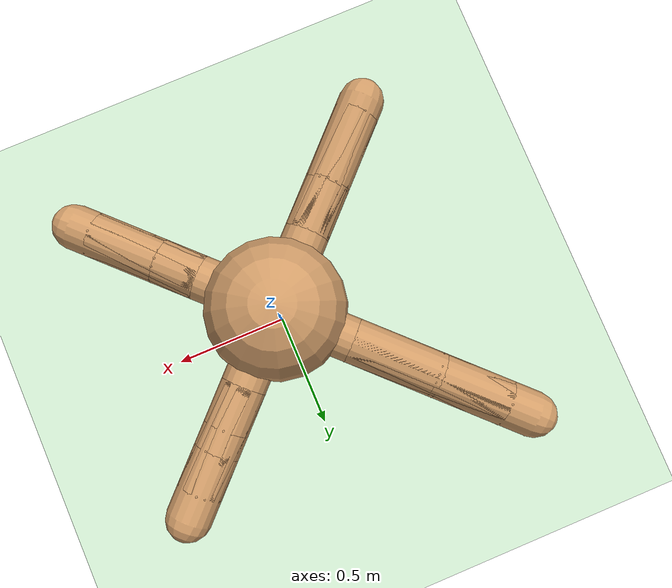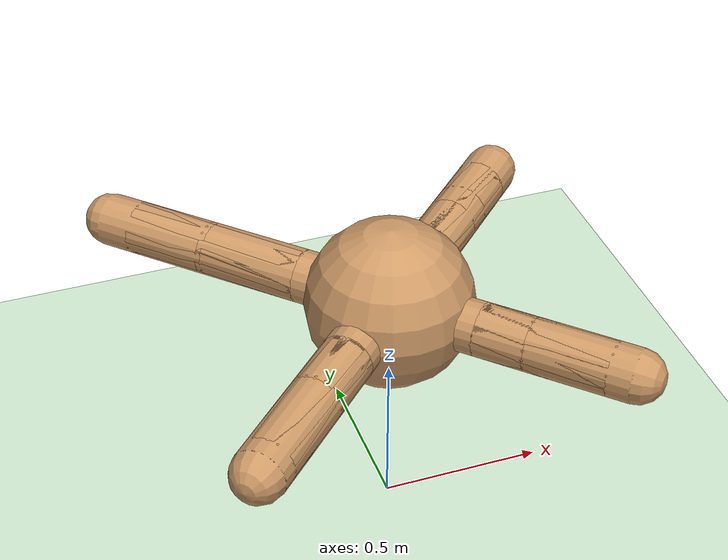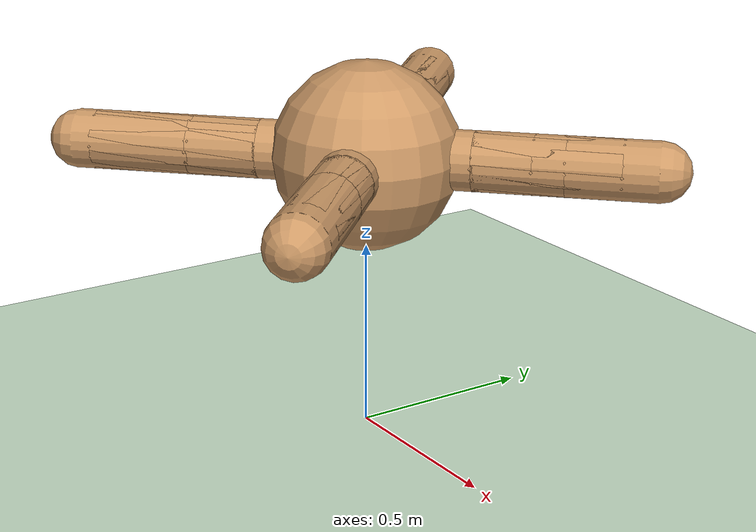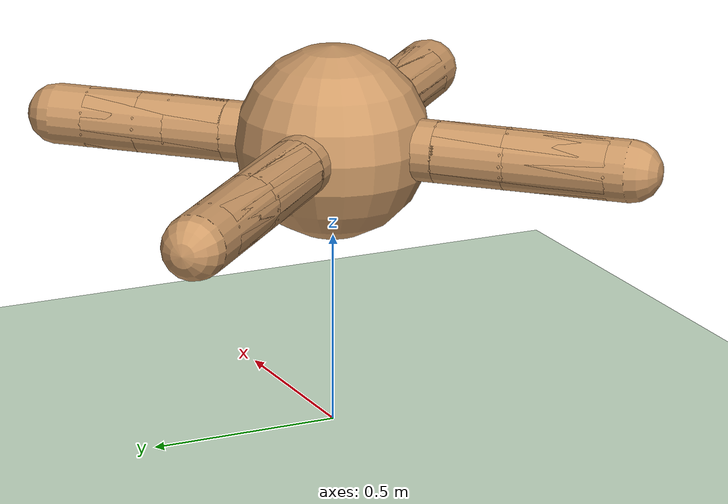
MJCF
<mujoco model="tensegrity default scene">
  <compiler angle="degree" coordinate="local" inertiafromgeom="true" autolimits="true" />
  <option integrator="RK4" timestep="0.01" gravity="0 0 -9.81" />

  <statistic center="0 0 .3" extent="1.2" />

    <asset>
    <texture builtin="gradient" height="100" rgb1="1 1 1" rgb2="0 0 0" type="skybox" width="100" />
    <texture builtin="flat" height="1278" mark="cross" markrgb="1 1 1" name="texgeom" random="0.01" rgb1="0.8 0.6 0.4" rgb2="0.8 0.6 0.4" type="cube" width="127" />
    <texture builtin="checker" height="100" name="texplane" rgb1="0 0 0" rgb2="0.8 0.8 0.8" type="2d" width="100" />
    <material name="MatPlane" reflectance="0.5" shininess="1" specular="1" texrepeat="60 60" texture="texplane" />
    <material name="geom" texture="texgeom" texuniform="true" />
  </asset>

  <worldbody>
    <light cutoff="100" diffuse="1 1 1" dir="-0 0 -1.3" directional="true" exponent="1" pos="0 0 1.3" specular=".1 .1 .1" />
    <geom conaffinity="1" condim="3" material="MatPlane" name="floor" pos="0 0 0" rgba="0.8 0.9 0.8 1" size="40 40 40" type="plane" />
  </worldbody>

<include file="AntRobot.xml" /><include file="AntRobot2.xml" /></mujoco>

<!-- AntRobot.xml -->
<mujoco>
    <default>
        <joint armature="1" damping="1" limited="true"/>
        <geom condim="3" conaffinity="0" density="5.0" friction="1 0.5 0.5" margin="0.01" rgba="0.8 0.6 0.4 1"/>
    </default>
    <worldbody>
        <body name="Base" pos="0.0 0.0 0.75">
            <joint type="free" armature="0" damping="0" limited="false" margin="0.01" pos="0 0 0"/>
            <geom type="sphere" rgba="0.8 0.6 0.4 1" size="0.25"/>
            <camera name="track" mode="trackcom" pos="0 -3 0.3" xyaxes="1 0 0 0 0 1"/>
            <geom name="limb0" type="capsule" fromto="0 0 0 0.2 0.2 0.0" size="0.08"/>
            <body name="rod_0.1" pos="0.25481282433576047 0.25481282433576047 0.0">
                <geom type="capsule" fromto="-0.05481282433576046 -0.05481282433576046 -0.0 0.05481282433576046 0.05481282433576046 0.0" size="0.08" name="geom_0.1"/>
                <site pos="0 0 0" quat="0.9238795325112867 0.0 0.0 0.3826834323650898" name="site_0.1"/>
                <joint type="hinge" pos="-0.05481282433576046 -0.05481282433576046 -0.0" axis="0 0 1" range="-30 30" name="joint_Base=rod_0.1"/>
                <body pos="-0.05481282433576046 -0.05481282433576046 -0.0" name="p0">
                    <site name="p0"/>
                </body>
                <body name="rod_1.2" pos="0.13517544388900107 0.13517544388900107 0.0">
                    <geom type="capsule" fromto="-0.08036261955324062 -0.08036261955324062 -0.0 0.08036261955324062 0.08036261955324062 0.0" size="0.08" name="geom_1.2"/>
                    <site pos="0 0 0" quat="0.9238795325112867 0.0 0.0 0.3826834323650898" name="site_1.2"/>
                    <joint type="hinge" pos="-0.08036261955324062 -0.08036261955324062 -0.0" axis="-1 1 0" range="30 70" name="joint_rod_0.1=rod_1.2"/>
                    <body pos="-0.08036261955324062 -0.08036261955324062 -0.0" name="p1">
                        <site name="p1"/>
                    </body>
                </body>
            </body>
            <geom name="limb1" type="capsule" fromto="0 0 0 -0.2 0.2 0.0" size="0.08"/>
            <body name="rod_3.4" pos="-0.31266861490299014 0.31266861490299014 0.0">
                <geom type="capsule" fromto="0.11266861490299013 -0.11266861490299013 -0.0 -0.11266861490299013 0.11266861490299013 0.0" size="0.08" name="geom_3.4"/>
                <site pos="0 0 0" quat="0.38268343236508984 0.0 -0.0 0.9238795325112867" name="site_3.4"/>
                <joint type="hinge" pos="0.11266861490299013 -0.11266861490299013 -0.0" axis="0 0 1" range="-30 30" name="joint_Base=rod_3.4"/>
                <body pos="0.11266861490299013 -0.11266861490299013 -0.0" name="p3">
                    <site name="p3"/>
                </body>
                <body name="rod_4.5" pos="-0.23278254153192404 0.23278254153192404 0.0">
                    <geom type="capsule" fromto="0.12011392662893391 -0.12011392662893391 -0.0 -0.12011392662893391 0.12011392662893391 0.0" size="0.08" name="geom_4.5"/>
                    <site pos="0 0 0" quat="0.38268343236508984 0.0 -0.0 0.9238795325112867" name="site_4.5"/>
                    <joint type="hinge" pos="0.12011392662893391 -0.12011392662893391 -0.0" axis="1 1 0" range="-70 -30" name="joint_rod_3.4=rod_4.5"/>
                    <body pos="0.12011392662893391 -0.12011392662893391 -0.0" name="p4">
                        <site name="p4"/>
                    </body>
                </body>
            </body>
            <geom name="limb2" type="capsule" fromto="0 0 0 -0.2 -0.2 0.0" size="0.08"/>
            <body name="rod_6.7" pos="-0.2644104266329461 -0.2644104266329461 0.0">
                <geom type="capsule" fromto="0.06441042663294608 0.06441042663294608 -0.0 -0.06441042663294608 -0.06441042663294608 0.0" size="0.08" name="geom_6.7"/>
                <site pos="0 0 0" quat="0.38268343236508984 0.0 -0.0 -0.9238795325112867" name="site_6.7"/>
                <joint type="hinge" pos="0.06441042663294608 0.06441042663294608 -0.0" axis="0 0 1" range="-30 30" name="joint_Base=rod_6.7"/>
                <body pos="0.06441042663294608 0.06441042663294608 -0.0" name="p6">
                    <site name="p6"/>
                </body>
                <body name="rod_7.8" pos="-0.17799463577080651 -0.17799463577080651 0.0">
                    <geom type="capsule" fromto="0.11358420913786044 0.11358420913786044 -0.0 -0.11358420913786044 -0.11358420913786044 0.0" size="0.08" name="geom_7.8"/>
                    <site pos="0 0 0" quat="0.38268343236508984 0.0 -0.0 -0.9238795325112867" name="site_7.8"/>
                    <joint type="hinge" pos="0.11358420913786044 0.11358420913786044 -0.0" axis="-1 1 0" range="-70 -30" name="joint_rod_6.7=rod_7.8"/>
                    <body pos="0.11358420913786044 0.11358420913786044 -0.0" name="p7">
                        <site name="p7"/>
                    </body>
                </body>
            </body>
            <geom name="limb3" type="capsule" fromto="0 0 0 0.2 -0.2 0.0" size="0.08"/>
            <body name="rod_9.10" pos="0.2531179534093557 -0.2531179534093557 0.0">
                <geom type="capsule" fromto="-0.053117953409355684 0.053117953409355684 -0.0 0.053117953409355684 -0.053117953409355684 0.0" size="0.08" name="geom_9.10"/>
                <site pos="0 0 0" quat="0.9238795325112867 0.0 0.0 -0.3826834323650898" name="site_9.10"/>
                <joint type="hinge" pos="-0.053117953409355684 0.053117953409355684 -0.0" axis="0 0 1" range="-30 30" name="joint_Base=rod_9.10"/>
                <body pos="-0.053117953409355684 0.053117953409355684 -0.0" name="p9">
                    <site name="p9"/>
                </body>
                <body name="rod_10.11" pos="0.1388442568929311 -0.1388442568929311 0.0">
                    <geom type="capsule" fromto="-0.0857263034835754 0.0857263034835754 -0.0 0.0857263034835754 -0.0857263034835754 0.0" size="0.08" name="geom_10.11"/>
                    <site pos="0 0 0" quat="0.9238795325112867 0.0 0.0 -0.3826834323650898" name="site_10.11"/>
                    <joint type="hinge" pos="-0.0857263034835754 0.0857263034835754 -0.0" axis="1 1 0" range="30 70" name="joint_rod_9.10=rod_10.11"/>
                    <body pos="-0.0857263034835754 0.0857263034835754 -0.0" name="p10">
                        <site name="p10"/>
                    </body>
                </body>
            </body>
        </body>
    </worldbody>
    <actuator>
        <motor gear="150" ctrlrange="-1.0 1.0" ctrllimited="true" joint="joint_Base=rod_0.1"/>
        <motor gear="150" ctrlrange="-1.0 1.0" ctrllimited="true" joint="joint_rod_0.1=rod_1.2"/>
        <motor gear="150" ctrlrange="-1.0 1.0" ctrllimited="true" joint="joint_Base=rod_3.4"/>
        <motor gear="150" ctrlrange="-1.0 1.0" ctrllimited="true" joint="joint_rod_3.4=rod_4.5"/>
        <motor gear="150" ctrlrange="-1.0 1.0" ctrllimited="true" joint="joint_Base=rod_6.7"/>
        <motor gear="150" ctrlrange="-1.0 1.0" ctrllimited="true" joint="joint_rod_6.7=rod_7.8"/>
        <motor gear="150" ctrlrange="-1.0 1.0" ctrllimited="true" joint="joint_Base=rod_9.10"/>
        <motor gear="150" ctrlrange="-1.0 1.0" ctrllimited="true" joint="joint_rod_9.10=rod_10.11"/>
    </actuator>
    <sensor>
        <accelerometer site="site_0.1"/>
        <gyro site="site_0.1"/>
        <magnetometer site="site_0.1"/>
        <accelerometer site="site_1.2"/>
        <gyro site="site_1.2"/>
        <magnetometer site="site_1.2"/>
        <accelerometer site="site_3.4"/>
        <gyro site="site_3.4"/>
        <magnetometer site="site_3.4"/>
        <accelerometer site="site_4.5"/>
        <gyro site="site_4.5"/>
        <magnetometer site="site_4.5"/>
        <accelerometer site="site_6.7"/>
        <gyro site="site_6.7"/>
        <magnetometer site="site_6.7"/>
        <accelerometer site="site_7.8"/>
        <gyro site="site_7.8"/>
        <magnetometer site="site_7.8"/>
        <accelerometer site="site_9.10"/>
        <gyro site="site_9.10"/>
        <magnetometer site="site_9.10"/>
        <accelerometer site="site_10.11"/>
        <gyro site="site_10.11"/>
        <magnetometer site="site_10.11"/>
    </sensor>
    <contact>
        <pair geom1="geom_0.1" geom2="floor"/>
        <pair geom1="geom_1.2" geom2="floor"/>
        <pair geom1="geom_3.4" geom2="floor"/>
        <pair geom1="geom_4.5" geom2="floor"/>
        <pair geom1="geom_6.7" geom2="floor"/>
        <pair geom1="geom_7.8" geom2="floor"/>
        <pair geom1="geom_9.10" geom2="floor"/>
        <pair geom1="geom_10.11" geom2="floor"/>
    </contact>
</mujoco>

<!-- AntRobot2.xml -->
<mujoco>
    <default>
        <joint armature="1" damping="1" limited="true"/>
        <geom condim="3" conaffinity="0" density="5.0" friction="1 0.5 0.5" margin="0.01" rgba="0.8 0.6 0.4 1"/>
    </default>
    <worldbody>
        <body name="Base_2" pos="0.0 0.0 0.75">
            <joint type="free" armature="0" damping="0" limited="false" margin="0.01" pos="0 0 0"/>
            <geom type="sphere" rgba="0.8 0.6 0.4 1" size="0.25"/>
            <camera name="track_2" mode="trackcom" pos="0 -3 0.3" xyaxes="1 0 0 0 0 1"/>
            <geom name="limb0_2" type="capsule" fromto="0 0 0 0.2 0.2 0.0" size="0.08"/>
            <body name="rod_0.1_2" pos="0.28418152158847293 0.28418152158847293 0.0">
                <geom type="capsule" fromto="-0.08418152158847292 -0.08418152158847292 -0.0 0.08418152158847292 0.08418152158847292 0.0" size="0.08" name="geom_0.1_2"/>
                <site pos="0 0 0" quat="0.9238795325112867 0.0 0.0 0.3826834323650898" name="site_0.1_2"/>
                <joint type="hinge" pos="-0.08418152158847292 -0.08418152158847292 -0.0" axis="0 0 1" range="-30 30" name="joint_Base=rod_0.1_2"/>
                <body pos="-0.08418152158847292 -0.08418152158847292 -0.0" name="p0_2">
                    <site name="p0_2"/>
                </body>
                <body name="rod_1.2_2" pos="0.16803931577506445 0.16803931577506445 0.0">
                    <geom type="capsule" fromto="-0.08385779418659153 -0.08385779418659153 -0.0 0.08385779418659153 0.08385779418659153 0.0" size="0.08" name="geom_1.2_2"/>
                    <site pos="0 0 0" quat="0.9238795325112867 0.0 0.0 0.3826834323650898" name="site_1.2_2"/>
                    <joint type="hinge" pos="-0.08385779418659153 -0.08385779418659153 -0.0" axis="-1 1 0" range="30 70" name="joint_rod_0.1=rod_1.2_2"/>
                    <body pos="-0.08385779418659153 -0.08385779418659153 -0.0" name="p1_2">
                        <site name="p1_2"/>
                    </body>
                </body>
            </body>
            <geom name="limb1_2" type="capsule" fromto="0 0 0 -0.2 0.2 0.0" size="0.08"/>
            <body name="rod_3.4_2" pos="-0.30709963950773356 0.30709963950773356 0.0">
                <geom type="capsule" fromto="0.10709963950773352 -0.10709963950773352 -0.0 -0.10709963950773352 0.10709963950773352 0.0" size="0.08" name="geom_3.4_2"/>
                <site pos="0 0 0" quat="0.38268343236508984 0.0 -0.0 0.9238795325112867" name="site_3.4_2"/>
                <joint type="hinge" pos="0.10709963950773352 -0.10709963950773352 -0.0" axis="0 0 1" range="-30 30" name="joint_Base=rod_3.4_2"/>
                <body pos="0.10709963950773352 -0.10709963950773352 -0.0" name="p3_2">
                    <site name="p3_2"/>
                </body>
                <body name="rod_4.5_2" pos="-0.19787655623655606 0.19787655623655606 0.0">
                    <geom type="capsule" fromto="0.09077691672882254 -0.09077691672882254 -0.0 -0.09077691672882254 0.09077691672882254 0.0" size="0.08" name="geom_4.5_2"/>
                    <site pos="0 0 0" quat="0.38268343236508984 0.0 -0.0 0.9238795325112867" name="site_4.5_2"/>
                    <joint type="hinge" pos="0.09077691672882254 -0.09077691672882254 -0.0" axis="1 1 0" range="-70 -30" name="joint_rod_3.4=rod_4.5_2"/>
                    <body pos="0.09077691672882254 -0.09077691672882254 -0.0" name="p4_2">
                        <site name="p4_2"/>
                    </body>
                </body>
            </body>
            <geom name="limb2_2" type="capsule" fromto="0 0 0 -0.2 -0.2 0.0" size="0.08"/>
            <body name="rod_6.7_2" pos="-0.26697329374048273 -0.26697329374048273 0.0">
                <geom type="capsule" fromto="0.06697329374048269 0.06697329374048269 -0.0 -0.06697329374048269 -0.06697329374048269 0.0" size="0.08" name="geom_6.7_2"/>
                <site pos="0 0 0" quat="0.38268343236508984 0.0 -0.0 -0.9238795325112867" name="site_6.7_2"/>
                <joint type="hinge" pos="0.06697329374048269 0.06697329374048269 -0.0" axis="0 0 1" range="-30 30" name="joint_Base=rod_6.7_2"/>
                <body pos="0.06697329374048269 0.06697329374048269 -0.0" name="p6_2">
                    <site name="p6_2"/>
                </body>
                <body name="rod_7.8_2" pos="-0.15967666168517305 -0.15967666168517305 0.0">
                    <geom type="capsule" fromto="0.09270336794469036 0.09270336794469036 -0.0 -0.09270336794469036 -0.09270336794469036 0.0" size="0.08" name="geom_7.8_2"/>
                    <site pos="0 0 0" quat="0.38268343236508984 0.0 -0.0 -0.9238795325112867" name="site_7.8_2"/>
                    <joint type="hinge" pos="0.09270336794469036 0.09270336794469036 -0.0" axis="-1 1 0" range="-70 -30" name="joint_rod_6.7=rod_7.8_2"/>
                    <body pos="0.09270336794469036 0.09270336794469036 -0.0" name="p7_2">
                        <site name="p7_2"/>
                    </body>
                </body>
            </body>
            <geom name="limb3_2" type="capsule" fromto="0 0 0 0.2 -0.2 0.0" size="0.08"/>
            <body name="rod_9.10_2" pos="0.25381518638601064 -0.25381518638601064 0.0">
                <geom type="capsule" fromto="-0.05381518638601063 0.05381518638601063 -0.0 0.05381518638601063 -0.05381518638601063 0.0" size="0.08" name="geom_9.10_2"/>
                <site pos="0 0 0" quat="0.9238795325112867 0.0 0.0 -0.38268343236508984" name="site_9.10_2"/>
                <joint type="hinge" pos="-0.05381518638601063 0.05381518638601063 -0.0" axis="0 0 1" range="-30 30" name="joint_Base=rod_9.10_2"/>
                <body pos="-0.05381518638601063 0.05381518638601063 -0.0" name="p9_2">
                    <site name="p9_2"/>
                </body>
                <body name="rod_10.11_2" pos="0.16376102171248516 -0.16376102171248516 0.0">
                    <geom type="capsule" fromto="-0.10994583532647453 0.10994583532647453 -0.0 0.10994583532647453 -0.10994583532647453 0.0" size="0.08" name="geom_10.11_2"/>
                    <site pos="0 0 0" quat="0.9238795325112867 0.0 0.0 -0.3826834323650898" name="site_10.11_2"/>
                    <joint type="hinge" pos="-0.10994583532647453 0.10994583532647453 -0.0" axis="1 1 0" range="30 70" name="joint_rod_9.10=rod_10.11_2"/>
                    <body pos="-0.10994583532647453 0.10994583532647453 -0.0" name="p10_2">
                        <site name="p10_2"/>
                    </body>
                </body>
            </body>
        </body>
    </worldbody>
    <actuator>
        <motor gear="150" ctrlrange="-1.0 1.0" ctrllimited="true" joint="joint_Base=rod_0.1"/>
        <motor gear="150" ctrlrange="-1.0 1.0" ctrllimited="true" joint="joint_rod_0.1=rod_1.2"/>
        <motor gear="150" ctrlrange="-1.0 1.0" ctrllimited="true" joint="joint_Base=rod_3.4"/>
        <motor gear="150" ctrlrange="-1.0 1.0" ctrllimited="true" joint="joint_rod_3.4=rod_4.5"/>
        <motor gear="150" ctrlrange="-1.0 1.0" ctrllimited="true" joint="joint_Base=rod_6.7"/>
        <motor gear="150" ctrlrange="-1.0 1.0" ctrllimited="true" joint="joint_rod_6.7=rod_7.8"/>
        <motor gear="150" ctrlrange="-1.0 1.0" ctrllimited="true" joint="joint_Base=rod_9.10"/>
        <motor gear="150" ctrlrange="-1.0 1.0" ctrllimited="true" joint="joint_rod_9.10=rod_10.11"/>
    </actuator>
    <sensor>
        <accelerometer site="site_0.1"/>
        <gyro site="site_0.1"/>
        <magnetometer site="site_0.1"/>
        <accelerometer site="site_1.2"/>
        <gyro site="site_1.2"/>
        <magnetometer site="site_1.2"/>
        <accelerometer site="site_3.4"/>
        <gyro site="site_3.4"/>
        <magnetometer site="site_3.4"/>
        <accelerometer site="site_4.5"/>
        <gyro site="site_4.5"/>
        <magnetometer site="site_4.5"/>
        <accelerometer site="site_6.7"/>
        <gyro site="site_6.7"/>
        <magnetometer site="site_6.7"/>
        <accelerometer site="site_7.8"/>
        <gyro site="site_7.8"/>
        <magnetometer site="site_7.8"/>
        <accelerometer site="site_9.10"/>
        <gyro site="site_9.10"/>
        <magnetometer site="site_9.10"/>
        <accelerometer site="site_10.11"/>
        <gyro site="site_10.11"/>
        <magnetometer site="site_10.11"/>
    </sensor>
    <contact>
        <pair geom1="geom_0.1" geom2="floor"/>
        <pair geom1="geom_1.2" geom2="floor"/>
        <pair geom1="geom_3.4" geom2="floor"/>
        <pair geom1="geom_4.5" geom2="floor"/>
        <pair geom1="geom_6.7" geom2="floor"/>
        <pair geom1="geom_7.8" geom2="floor"/>
        <pair geom1="geom_9.10" geom2="floor"/>
        <pair geom1="geom_10.11" geom2="floor"/>
    </contact>
</mujoco>
